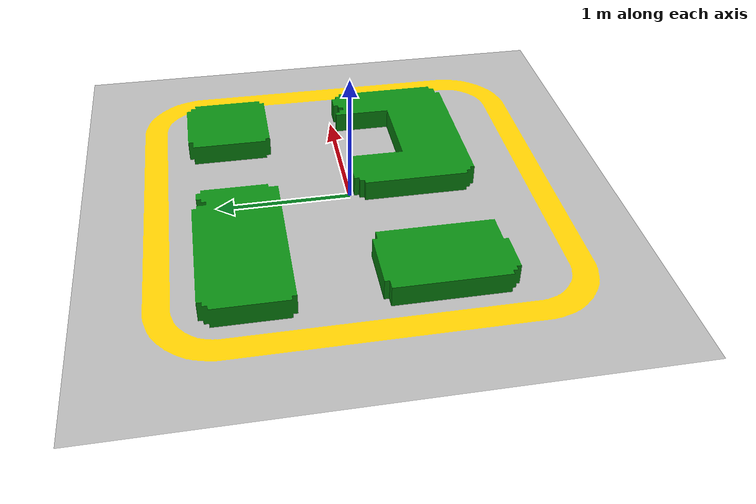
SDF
<?xml version="1.0"?>
<sdf version="1.6">
  <model name="autonomous_map_3d">
    <static>true</static>
    <link name="map_link">
      <visual name="textured_map_visual">
        <geometry>
          <mesh>
            <uri>model://autonomous_map_3d/meshes/autonomous_map_3d.dae</uri>
          </mesh>
        </geometry>
      </visual>
      <collision name="floor_collision">
        <pose>0 0 -0.01 0 0 0</pose>
        <geometry>
          <box>
            <size>4.0 4.0 0.02</size>
          </box>
        </geometry>
      </collision>
    </link>
  </model>
</sdf>
